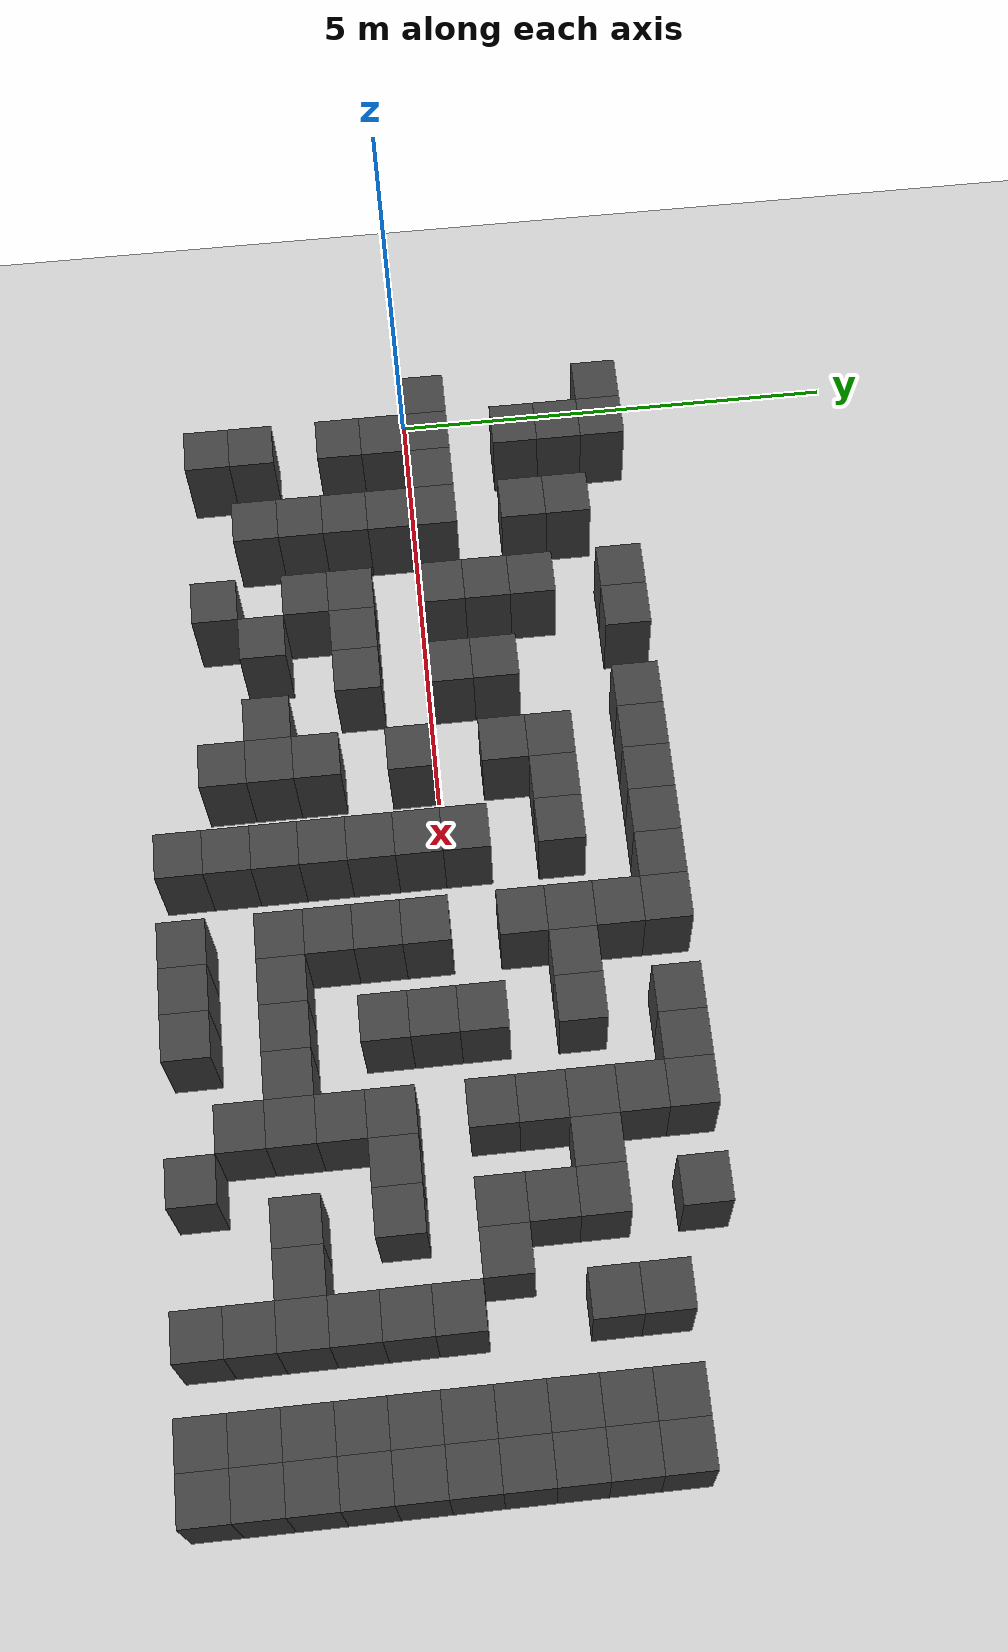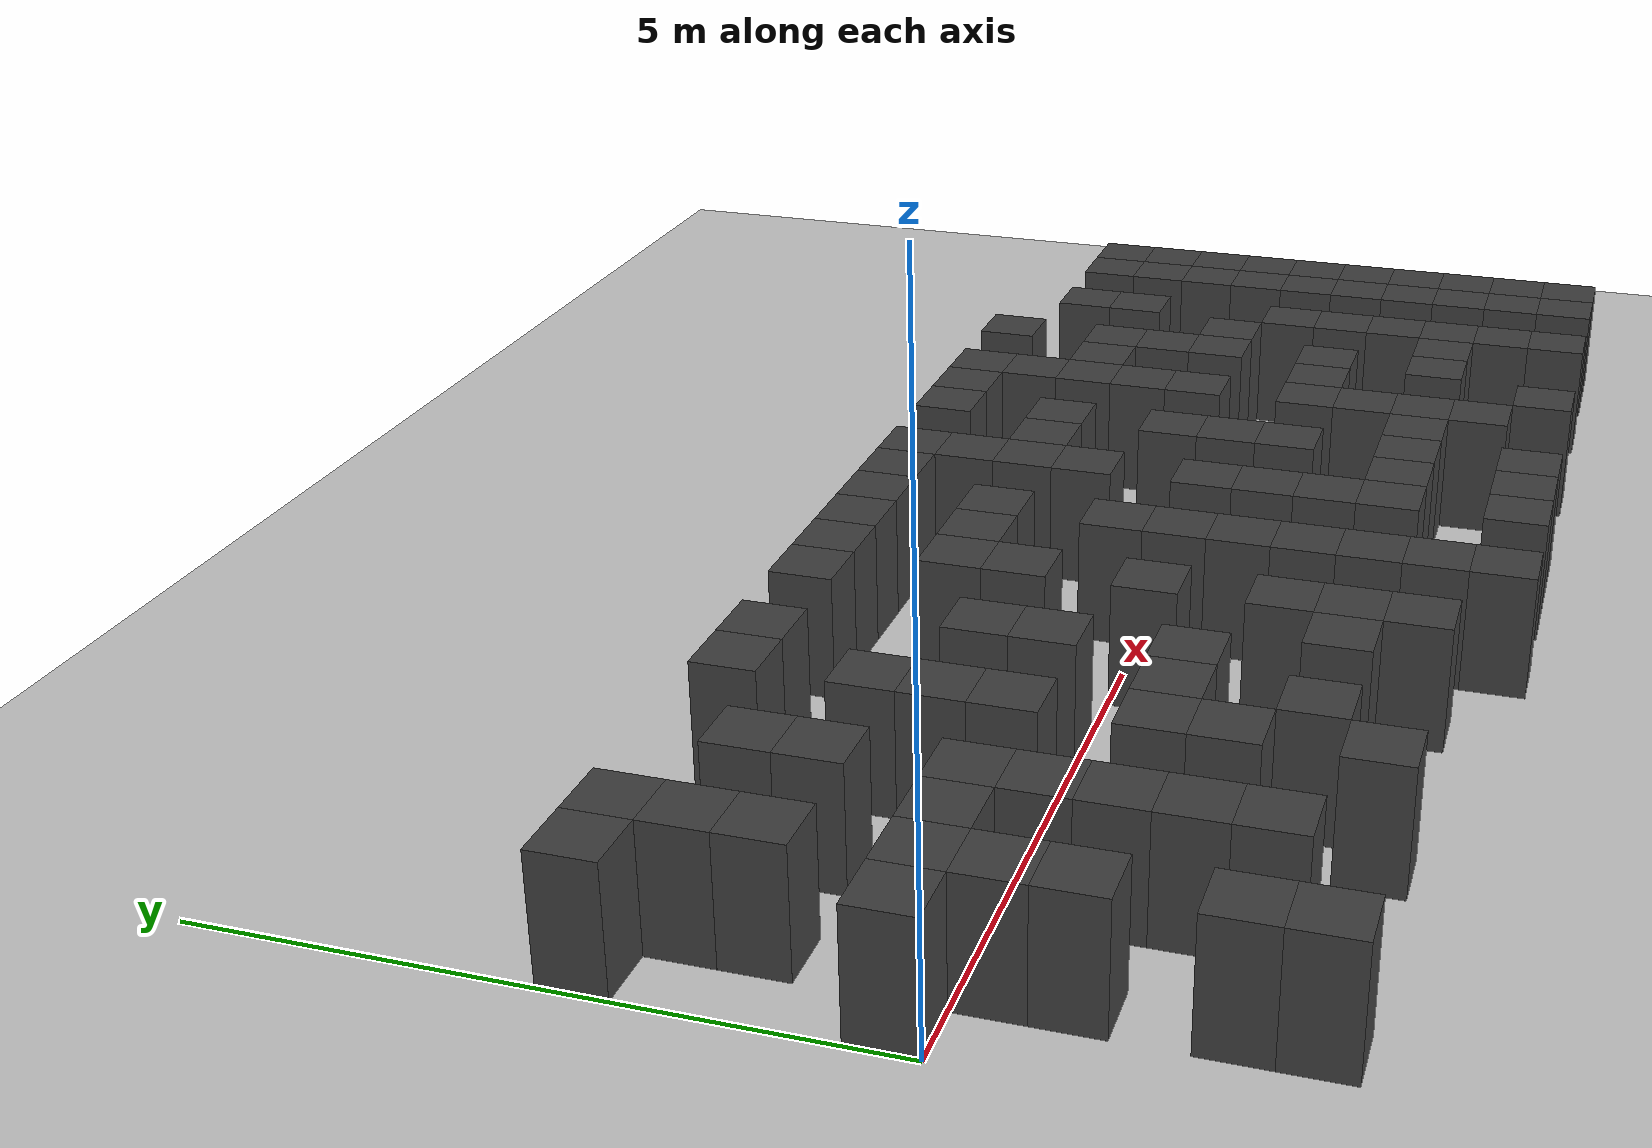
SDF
<sdf version="1.7">
 <world name="map_15168">
  <model name="ground_plane">
   <static>true</static>
   <link name="link">
    <collision name="collision">
     <geometry><plane><normal>0 0 1</normal><size>200 200</size></plane></geometry>
    </collision>
    <visual name="visual">
     <geometry><plane><normal>0 0 1</normal><size>200 200</size></plane></geometry>
     <material><ambient>0.8 0.8 0.8 1</ambient><diffuse>0.8 0.8 0.8 1</diffuse></material>
    </visual>
   </link>
  </model>
  <model name="maze_environment">
   <static>true</static>
   <link name="wall_488">
    <pose>0.250 2.250 0.500 0 0 0</pose>
    <collision name="col"><geometry><box><size>0.5 0.5 1.0</size></box></geometry></collision>
    <visual name="vis">
     <geometry><box><size>0.5 0.5 1.0</size></box></geometry>
     <material><ambient>0.15 0.15 0.15 1</ambient><diffuse>0.25 0.25 0.25 1</diffuse></material>
    </visual>
   </link>
   <link name="wall_489">
    <pose>0.750 2.250 0.500 0 0 0</pose>
    <collision name="col"><geometry><box><size>0.5 0.5 1.0</size></box></geometry></collision>
    <visual name="vis">
     <geometry><box><size>0.5 0.5 1.0</size></box></geometry>
     <material><ambient>0.15 0.15 0.15 1</ambient><diffuse>0.25 0.25 0.25 1</diffuse></material>
    </visual>
   </link>
   <link name="wall_490">
    <pose>2.750 2.250 0.500 0 0 0</pose>
    <collision name="col"><geometry><box><size>0.5 0.5 1.0</size></box></geometry></collision>
    <visual name="vis">
     <geometry><box><size>0.5 0.5 1.0</size></box></geometry>
     <material><ambient>0.15 0.15 0.15 1</ambient><diffuse>0.25 0.25 0.25 1</diffuse></material>
    </visual>
   </link>
   <link name="wall_491">
    <pose>3.250 2.250 0.500 0 0 0</pose>
    <collision name="col"><geometry><box><size>0.5 0.5 1.0</size></box></geometry></collision>
    <visual name="vis">
     <geometry><box><size>0.5 0.5 1.0</size></box></geometry>
     <material><ambient>0.15 0.15 0.15 1</ambient><diffuse>0.25 0.25 0.25 1</diffuse></material>
    </visual>
   </link>
   <link name="wall_492">
    <pose>4.250 2.250 0.500 0 0 0</pose>
    <collision name="col"><geometry><box><size>0.5 0.5 1.0</size></box></geometry></collision>
    <visual name="vis">
     <geometry><box><size>0.5 0.5 1.0</size></box></geometry>
     <material><ambient>0.15 0.15 0.15 1</ambient><diffuse>0.25 0.25 0.25 1</diffuse></material>
    </visual>
   </link>
   <link name="wall_493">
    <pose>4.750 2.250 0.500 0 0 0</pose>
    <collision name="col"><geometry><box><size>0.5 0.5 1.0</size></box></geometry></collision>
    <visual name="vis">
     <geometry><box><size>0.5 0.5 1.0</size></box></geometry>
     <material><ambient>0.15 0.15 0.15 1</ambient><diffuse>0.25 0.25 0.25 1</diffuse></material>
    </visual>
   </link>
   <link name="wall_494">
    <pose>5.250 2.250 0.500 0 0 0</pose>
    <collision name="col"><geometry><box><size>0.5 0.5 1.0</size></box></geometry></collision>
    <visual name="vis">
     <geometry><box><size>0.5 0.5 1.0</size></box></geometry>
     <material><ambient>0.15 0.15 0.15 1</ambient><diffuse>0.25 0.25 0.25 1</diffuse></material>
    </visual>
   </link>
   <link name="wall_495">
    <pose>5.750 2.250 0.500 0 0 0</pose>
    <collision name="col"><geometry><box><size>0.5 0.5 1.0</size></box></geometry></collision>
    <visual name="vis">
     <geometry><box><size>0.5 0.5 1.0</size></box></geometry>
     <material><ambient>0.15 0.15 0.15 1</ambient><diffuse>0.25 0.25 0.25 1</diffuse></material>
    </visual>
   </link>
   <link name="wall_496">
    <pose>6.250 2.250 0.500 0 0 0</pose>
    <collision name="col"><geometry><box><size>0.5 0.5 1.0</size></box></geometry></collision>
    <visual name="vis">
     <geometry><box><size>0.5 0.5 1.0</size></box></geometry>
     <material><ambient>0.15 0.15 0.15 1</ambient><diffuse>0.25 0.25 0.25 1</diffuse></material>
    </visual>
   </link>
   <link name="wall_497">
    <pose>6.750 2.250 0.500 0 0 0</pose>
    <collision name="col"><geometry><box><size>0.5 0.5 1.0</size></box></geometry></collision>
    <visual name="vis">
     <geometry><box><size>0.5 0.5 1.0</size></box></geometry>
     <material><ambient>0.15 0.15 0.15 1</ambient><diffuse>0.25 0.25 0.25 1</diffuse></material>
    </visual>
   </link>
   <link name="wall_498">
    <pose>7.750 2.250 0.500 0 0 0</pose>
    <collision name="col"><geometry><box><size>0.5 0.5 1.0</size></box></geometry></collision>
    <visual name="vis">
     <geometry><box><size>0.5 0.5 1.0</size></box></geometry>
     <material><ambient>0.15 0.15 0.15 1</ambient><diffuse>0.25 0.25 0.25 1</diffuse></material>
    </visual>
   </link>
   <link name="wall_499">
    <pose>8.250 2.250 0.500 0 0 0</pose>
    <collision name="col"><geometry><box><size>0.5 0.5 1.0</size></box></geometry></collision>
    <visual name="vis">
     <geometry><box><size>0.5 0.5 1.0</size></box></geometry>
     <material><ambient>0.15 0.15 0.15 1</ambient><diffuse>0.25 0.25 0.25 1</diffuse></material>
    </visual>
   </link>
   <link name="wall_500">
    <pose>8.750 2.250 0.500 0 0 0</pose>
    <collision name="col"><geometry><box><size>0.5 0.5 1.0</size></box></geometry></collision>
    <visual name="vis">
     <geometry><box><size>0.5 0.5 1.0</size></box></geometry>
     <material><ambient>0.15 0.15 0.15 1</ambient><diffuse>0.25 0.25 0.25 1</diffuse></material>
    </visual>
   </link>
   <link name="wall_501">
    <pose>9.750 2.250 0.500 0 0 0</pose>
    <collision name="col"><geometry><box><size>0.5 0.5 1.0</size></box></geometry></collision>
    <visual name="vis">
     <geometry><box><size>0.5 0.5 1.0</size></box></geometry>
     <material><ambient>0.15 0.15 0.15 1</ambient><diffuse>0.25 0.25 0.25 1</diffuse></material>
    </visual>
   </link>
   <link name="wall_514">
    <pose>0.750 1.750 0.500 0 0 0</pose>
    <collision name="col"><geometry><box><size>0.5 0.5 1.0</size></box></geometry></collision>
    <visual name="vis">
     <geometry><box><size>0.5 0.5 1.0</size></box></geometry>
     <material><ambient>0.15 0.15 0.15 1</ambient><diffuse>0.25 0.25 0.25 1</diffuse></material>
    </visual>
   </link>
   <link name="wall_515">
    <pose>1.750 1.750 0.500 0 0 0</pose>
    <collision name="col"><geometry><box><size>0.5 0.5 1.0</size></box></geometry></collision>
    <visual name="vis">
     <geometry><box><size>0.5 0.5 1.0</size></box></geometry>
     <material><ambient>0.15 0.15 0.15 1</ambient><diffuse>0.25 0.25 0.25 1</diffuse></material>
    </visual>
   </link>
   <link name="wall_516">
    <pose>6.750 1.750 0.500 0 0 0</pose>
    <collision name="col"><geometry><box><size>0.5 0.5 1.0</size></box></geometry></collision>
    <visual name="vis">
     <geometry><box><size>0.5 0.5 1.0</size></box></geometry>
     <material><ambient>0.15 0.15 0.15 1</ambient><diffuse>0.25 0.25 0.25 1</diffuse></material>
    </visual>
   </link>
   <link name="wall_517">
    <pose>8.750 1.750 0.500 0 0 0</pose>
    <collision name="col"><geometry><box><size>0.5 0.5 1.0</size></box></geometry></collision>
    <visual name="vis">
     <geometry><box><size>0.5 0.5 1.0</size></box></geometry>
     <material><ambient>0.15 0.15 0.15 1</ambient><diffuse>0.25 0.25 0.25 1</diffuse></material>
    </visual>
   </link>
   <link name="wall_518">
    <pose>10.750 1.750 0.500 0 0 0</pose>
    <collision name="col"><geometry><box><size>0.5 0.5 1.0</size></box></geometry></collision>
    <visual name="vis">
     <geometry><box><size>0.5 0.5 1.0</size></box></geometry>
     <material><ambient>0.15 0.15 0.15 1</ambient><diffuse>0.25 0.25 0.25 1</diffuse></material>
    </visual>
   </link>
   <link name="wall_519">
    <pose>11.750 1.750 0.500 0 0 0</pose>
    <collision name="col"><geometry><box><size>0.5 0.5 1.0</size></box></geometry></collision>
    <visual name="vis">
     <geometry><box><size>0.5 0.5 1.0</size></box></geometry>
     <material><ambient>0.15 0.15 0.15 1</ambient><diffuse>0.25 0.25 0.25 1</diffuse></material>
    </visual>
   </link>
   <link name="wall_520">
    <pose>12.250 1.750 0.500 0 0 0</pose>
    <collision name="col"><geometry><box><size>0.5 0.5 1.0</size></box></geometry></collision>
    <visual name="vis">
     <geometry><box><size>0.5 0.5 1.0</size></box></geometry>
     <material><ambient>0.15 0.15 0.15 1</ambient><diffuse>0.25 0.25 0.25 1</diffuse></material>
    </visual>
   </link>
   <link name="wall_537">
    <pose>0.750 1.250 0.500 0 0 0</pose>
    <collision name="col"><geometry><box><size>0.5 0.5 1.0</size></box></geometry></collision>
    <visual name="vis">
     <geometry><box><size>0.5 0.5 1.0</size></box></geometry>
     <material><ambient>0.15 0.15 0.15 1</ambient><diffuse>0.25 0.25 0.25 1</diffuse></material>
    </visual>
   </link>
   <link name="wall_538">
    <pose>1.750 1.250 0.500 0 0 0</pose>
    <collision name="col"><geometry><box><size>0.5 0.5 1.0</size></box></geometry></collision>
    <visual name="vis">
     <geometry><box><size>0.5 0.5 1.0</size></box></geometry>
     <material><ambient>0.15 0.15 0.15 1</ambient><diffuse>0.25 0.25 0.25 1</diffuse></material>
    </visual>
   </link>
   <link name="wall_539">
    <pose>2.750 1.250 0.500 0 0 0</pose>
    <collision name="col"><geometry><box><size>0.5 0.5 1.0</size></box></geometry></collision>
    <visual name="vis">
     <geometry><box><size>0.5 0.5 1.0</size></box></geometry>
     <material><ambient>0.15 0.15 0.15 1</ambient><diffuse>0.25 0.25 0.25 1</diffuse></material>
    </visual>
   </link>
   <link name="wall_540">
    <pose>4.750 1.250 0.500 0 0 0</pose>
    <collision name="col"><geometry><box><size>0.5 0.5 1.0</size></box></geometry></collision>
    <visual name="vis">
     <geometry><box><size>0.5 0.5 1.0</size></box></geometry>
     <material><ambient>0.15 0.15 0.15 1</ambient><diffuse>0.25 0.25 0.25 1</diffuse></material>
    </visual>
   </link>
   <link name="wall_541">
    <pose>5.250 1.250 0.500 0 0 0</pose>
    <collision name="col"><geometry><box><size>0.5 0.5 1.0</size></box></geometry></collision>
    <visual name="vis">
     <geometry><box><size>0.5 0.5 1.0</size></box></geometry>
     <material><ambient>0.15 0.15 0.15 1</ambient><diffuse>0.25 0.25 0.25 1</diffuse></material>
    </visual>
   </link>
   <link name="wall_542">
    <pose>5.750 1.250 0.500 0 0 0</pose>
    <collision name="col"><geometry><box><size>0.5 0.5 1.0</size></box></geometry></collision>
    <visual name="vis">
     <geometry><box><size>0.5 0.5 1.0</size></box></geometry>
     <material><ambient>0.15 0.15 0.15 1</ambient><diffuse>0.25 0.25 0.25 1</diffuse></material>
    </visual>
   </link>
   <link name="wall_543">
    <pose>6.750 1.250 0.500 0 0 0</pose>
    <collision name="col"><geometry><box><size>0.5 0.5 1.0</size></box></geometry></collision>
    <visual name="vis">
     <geometry><box><size>0.5 0.5 1.0</size></box></geometry>
     <material><ambient>0.15 0.15 0.15 1</ambient><diffuse>0.25 0.25 0.25 1</diffuse></material>
    </visual>
   </link>
   <link name="wall_544">
    <pose>7.250 1.250 0.500 0 0 0</pose>
    <collision name="col"><geometry><box><size>0.5 0.5 1.0</size></box></geometry></collision>
    <visual name="vis">
     <geometry><box><size>0.5 0.5 1.0</size></box></geometry>
     <material><ambient>0.15 0.15 0.15 1</ambient><diffuse>0.25 0.25 0.25 1</diffuse></material>
    </visual>
   </link>
   <link name="wall_545">
    <pose>7.750 1.250 0.500 0 0 0</pose>
    <collision name="col"><geometry><box><size>0.5 0.5 1.0</size></box></geometry></collision>
    <visual name="vis">
     <geometry><box><size>0.5 0.5 1.0</size></box></geometry>
     <material><ambient>0.15 0.15 0.15 1</ambient><diffuse>0.25 0.25 0.25 1</diffuse></material>
    </visual>
   </link>
   <link name="wall_546">
    <pose>8.750 1.250 0.500 0 0 0</pose>
    <collision name="col"><geometry><box><size>0.5 0.5 1.0</size></box></geometry></collision>
    <visual name="vis">
     <geometry><box><size>0.5 0.5 1.0</size></box></geometry>
     <material><ambient>0.15 0.15 0.15 1</ambient><diffuse>0.25 0.25 0.25 1</diffuse></material>
    </visual>
   </link>
   <link name="wall_547">
    <pose>9.250 1.250 0.500 0 0 0</pose>
    <collision name="col"><geometry><box><size>0.5 0.5 1.0</size></box></geometry></collision>
    <visual name="vis">
     <geometry><box><size>0.5 0.5 1.0</size></box></geometry>
     <material><ambient>0.15 0.15 0.15 1</ambient><diffuse>0.25 0.25 0.25 1</diffuse></material>
    </visual>
   </link>
   <link name="wall_548">
    <pose>9.750 1.250 0.500 0 0 0</pose>
    <collision name="col"><geometry><box><size>0.5 0.5 1.0</size></box></geometry></collision>
    <visual name="vis">
     <geometry><box><size>0.5 0.5 1.0</size></box></geometry>
     <material><ambient>0.15 0.15 0.15 1</ambient><diffuse>0.25 0.25 0.25 1</diffuse></material>
    </visual>
   </link>
   <link name="wall_549">
    <pose>10.750 1.250 0.500 0 0 0</pose>
    <collision name="col"><geometry><box><size>0.5 0.5 1.0</size></box></geometry></collision>
    <visual name="vis">
     <geometry><box><size>0.5 0.5 1.0</size></box></geometry>
     <material><ambient>0.15 0.15 0.15 1</ambient><diffuse>0.25 0.25 0.25 1</diffuse></material>
    </visual>
   </link>
   <link name="wall_550">
    <pose>11.750 1.250 0.500 0 0 0</pose>
    <collision name="col"><geometry><box><size>0.5 0.5 1.0</size></box></geometry></collision>
    <visual name="vis">
     <geometry><box><size>0.5 0.5 1.0</size></box></geometry>
     <material><ambient>0.15 0.15 0.15 1</ambient><diffuse>0.25 0.25 0.25 1</diffuse></material>
    </visual>
   </link>
   <link name="wall_551">
    <pose>12.250 1.250 0.500 0 0 0</pose>
    <collision name="col"><geometry><box><size>0.5 0.5 1.0</size></box></geometry></collision>
    <visual name="vis">
     <geometry><box><size>0.5 0.5 1.0</size></box></geometry>
     <material><ambient>0.15 0.15 0.15 1</ambient><diffuse>0.25 0.25 0.25 1</diffuse></material>
    </visual>
   </link>
   <link name="wall_557">
    <pose>2.750 0.750 0.500 0 0 0</pose>
    <collision name="col"><geometry><box><size>0.5 0.5 1.0</size></box></geometry></collision>
    <visual name="vis">
     <geometry><box><size>0.5 0.5 1.0</size></box></geometry>
     <material><ambient>0.15 0.15 0.15 1</ambient><diffuse>0.25 0.25 0.25 1</diffuse></material>
    </visual>
   </link>
   <link name="wall_558">
    <pose>3.750 0.750 0.500 0 0 0</pose>
    <collision name="col"><geometry><box><size>0.5 0.5 1.0</size></box></geometry></collision>
    <visual name="vis">
     <geometry><box><size>0.5 0.5 1.0</size></box></geometry>
     <material><ambient>0.15 0.15 0.15 1</ambient><diffuse>0.25 0.25 0.25 1</diffuse></material>
    </visual>
   </link>
   <link name="wall_559">
    <pose>4.750 0.750 0.500 0 0 0</pose>
    <collision name="col"><geometry><box><size>0.5 0.5 1.0</size></box></geometry></collision>
    <visual name="vis">
     <geometry><box><size>0.5 0.5 1.0</size></box></geometry>
     <material><ambient>0.15 0.15 0.15 1</ambient><diffuse>0.25 0.25 0.25 1</diffuse></material>
    </visual>
   </link>
   <link name="wall_560">
    <pose>6.750 0.750 0.500 0 0 0</pose>
    <collision name="col"><geometry><box><size>0.5 0.5 1.0</size></box></geometry></collision>
    <visual name="vis">
     <geometry><box><size>0.5 0.5 1.0</size></box></geometry>
     <material><ambient>0.15 0.15 0.15 1</ambient><diffuse>0.25 0.25 0.25 1</diffuse></material>
    </visual>
   </link>
   <link name="wall_561">
    <pose>8.750 0.750 0.500 0 0 0</pose>
    <collision name="col"><geometry><box><size>0.5 0.5 1.0</size></box></geometry></collision>
    <visual name="vis">
     <geometry><box><size>0.5 0.5 1.0</size></box></geometry>
     <material><ambient>0.15 0.15 0.15 1</ambient><diffuse>0.25 0.25 0.25 1</diffuse></material>
    </visual>
   </link>
   <link name="wall_562">
    <pose>9.750 0.750 0.500 0 0 0</pose>
    <collision name="col"><geometry><box><size>0.5 0.5 1.0</size></box></geometry></collision>
    <visual name="vis">
     <geometry><box><size>0.5 0.5 1.0</size></box></geometry>
     <material><ambient>0.15 0.15 0.15 1</ambient><diffuse>0.25 0.25 0.25 1</diffuse></material>
    </visual>
   </link>
   <link name="wall_563">
    <pose>11.750 0.750 0.500 0 0 0</pose>
    <collision name="col"><geometry><box><size>0.5 0.5 1.0</size></box></geometry></collision>
    <visual name="vis">
     <geometry><box><size>0.5 0.5 1.0</size></box></geometry>
     <material><ambient>0.15 0.15 0.15 1</ambient><diffuse>0.25 0.25 0.25 1</diffuse></material>
    </visual>
   </link>
   <link name="wall_564">
    <pose>12.250 0.750 0.500 0 0 0</pose>
    <collision name="col"><geometry><box><size>0.5 0.5 1.0</size></box></geometry></collision>
    <visual name="vis">
     <geometry><box><size>0.5 0.5 1.0</size></box></geometry>
     <material><ambient>0.15 0.15 0.15 1</ambient><diffuse>0.25 0.25 0.25 1</diffuse></material>
    </visual>
   </link>
   <link name="wall_583">
    <pose>0.250 0.250 0.500 0 0 0</pose>
    <collision name="col"><geometry><box><size>0.5 0.5 1.0</size></box></geometry></collision>
    <visual name="vis">
     <geometry><box><size>0.5 0.5 1.0</size></box></geometry>
     <material><ambient>0.15 0.15 0.15 1</ambient><diffuse>0.25 0.25 0.25 1</diffuse></material>
    </visual>
   </link>
   <link name="wall_584">
    <pose>0.750 0.250 0.500 0 0 0</pose>
    <collision name="col"><geometry><box><size>0.5 0.5 1.0</size></box></geometry></collision>
    <visual name="vis">
     <geometry><box><size>0.5 0.5 1.0</size></box></geometry>
     <material><ambient>0.15 0.15 0.15 1</ambient><diffuse>0.25 0.25 0.25 1</diffuse></material>
    </visual>
   </link>
   <link name="wall_585">
    <pose>1.250 0.250 0.500 0 0 0</pose>
    <collision name="col"><geometry><box><size>0.5 0.5 1.0</size></box></geometry></collision>
    <visual name="vis">
     <geometry><box><size>0.5 0.5 1.0</size></box></geometry>
     <material><ambient>0.15 0.15 0.15 1</ambient><diffuse>0.25 0.25 0.25 1</diffuse></material>
    </visual>
   </link>
   <link name="wall_586">
    <pose>1.750 0.250 0.500 0 0 0</pose>
    <collision name="col"><geometry><box><size>0.5 0.5 1.0</size></box></geometry></collision>
    <visual name="vis">
     <geometry><box><size>0.5 0.5 1.0</size></box></geometry>
     <material><ambient>0.15 0.15 0.15 1</ambient><diffuse>0.25 0.25 0.25 1</diffuse></material>
    </visual>
   </link>
   <link name="wall_587">
    <pose>2.750 0.250 0.500 0 0 0</pose>
    <collision name="col"><geometry><box><size>0.5 0.5 1.0</size></box></geometry></collision>
    <visual name="vis">
     <geometry><box><size>0.5 0.5 1.0</size></box></geometry>
     <material><ambient>0.15 0.15 0.15 1</ambient><diffuse>0.25 0.25 0.25 1</diffuse></material>
    </visual>
   </link>
   <link name="wall_588">
    <pose>3.750 0.250 0.500 0 0 0</pose>
    <collision name="col"><geometry><box><size>0.5 0.5 1.0</size></box></geometry></collision>
    <visual name="vis">
     <geometry><box><size>0.5 0.5 1.0</size></box></geometry>
     <material><ambient>0.15 0.15 0.15 1</ambient><diffuse>0.25 0.25 0.25 1</diffuse></material>
    </visual>
   </link>
   <link name="wall_589">
    <pose>5.750 0.250 0.500 0 0 0</pose>
    <collision name="col"><geometry><box><size>0.5 0.5 1.0</size></box></geometry></collision>
    <visual name="vis">
     <geometry><box><size>0.5 0.5 1.0</size></box></geometry>
     <material><ambient>0.15 0.15 0.15 1</ambient><diffuse>0.25 0.25 0.25 1</diffuse></material>
    </visual>
   </link>
   <link name="wall_590">
    <pose>7.750 0.250 0.500 0 0 0</pose>
    <collision name="col"><geometry><box><size>0.5 0.5 1.0</size></box></geometry></collision>
    <visual name="vis">
     <geometry><box><size>0.5 0.5 1.0</size></box></geometry>
     <material><ambient>0.15 0.15 0.15 1</ambient><diffuse>0.25 0.25 0.25 1</diffuse></material>
    </visual>
   </link>
   <link name="wall_591">
    <pose>8.750 0.250 0.500 0 0 0</pose>
    <collision name="col"><geometry><box><size>0.5 0.5 1.0</size></box></geometry></collision>
    <visual name="vis">
     <geometry><box><size>0.5 0.5 1.0</size></box></geometry>
     <material><ambient>0.15 0.15 0.15 1</ambient><diffuse>0.25 0.25 0.25 1</diffuse></material>
    </visual>
   </link>
   <link name="wall_592">
    <pose>9.750 0.250 0.500 0 0 0</pose>
    <collision name="col"><geometry><box><size>0.5 0.5 1.0</size></box></geometry></collision>
    <visual name="vis">
     <geometry><box><size>0.5 0.5 1.0</size></box></geometry>
     <material><ambient>0.15 0.15 0.15 1</ambient><diffuse>0.25 0.25 0.25 1</diffuse></material>
    </visual>
   </link>
   <link name="wall_593">
    <pose>10.250 0.250 0.500 0 0 0</pose>
    <collision name="col"><geometry><box><size>0.5 0.5 1.0</size></box></geometry></collision>
    <visual name="vis">
     <geometry><box><size>0.5 0.5 1.0</size></box></geometry>
     <material><ambient>0.15 0.15 0.15 1</ambient><diffuse>0.25 0.25 0.25 1</diffuse></material>
    </visual>
   </link>
   <link name="wall_594">
    <pose>11.750 0.250 0.500 0 0 0</pose>
    <collision name="col"><geometry><box><size>0.5 0.5 1.0</size></box></geometry></collision>
    <visual name="vis">
     <geometry><box><size>0.5 0.5 1.0</size></box></geometry>
     <material><ambient>0.15 0.15 0.15 1</ambient><diffuse>0.25 0.25 0.25 1</diffuse></material>
    </visual>
   </link>
   <link name="wall_595">
    <pose>12.250 0.250 0.500 0 0 0</pose>
    <collision name="col"><geometry><box><size>0.5 0.5 1.0</size></box></geometry></collision>
    <visual name="vis">
     <geometry><box><size>0.5 0.5 1.0</size></box></geometry>
     <material><ambient>0.15 0.15 0.15 1</ambient><diffuse>0.25 0.25 0.25 1</diffuse></material>
    </visual>
   </link>
   <link name="wall_600">
    <pose>0.750 -0.250 0.500 0 0 0</pose>
    <collision name="col"><geometry><box><size>0.5 0.5 1.0</size></box></geometry></collision>
    <visual name="vis">
     <geometry><box><size>0.5 0.5 1.0</size></box></geometry>
     <material><ambient>0.15 0.15 0.15 1</ambient><diffuse>0.25 0.25 0.25 1</diffuse></material>
    </visual>
   </link>
   <link name="wall_601">
    <pose>1.750 -0.250 0.500 0 0 0</pose>
    <collision name="col"><geometry><box><size>0.5 0.5 1.0</size></box></geometry></collision>
    <visual name="vis">
     <geometry><box><size>0.5 0.5 1.0</size></box></geometry>
     <material><ambient>0.15 0.15 0.15 1</ambient><diffuse>0.25 0.25 0.25 1</diffuse></material>
    </visual>
   </link>
   <link name="wall_602">
    <pose>4.750 -0.250 0.500 0 0 0</pose>
    <collision name="col"><geometry><box><size>0.5 0.5 1.0</size></box></geometry></collision>
    <visual name="vis">
     <geometry><box><size>0.5 0.5 1.0</size></box></geometry>
     <material><ambient>0.15 0.15 0.15 1</ambient><diffuse>0.25 0.25 0.25 1</diffuse></material>
    </visual>
   </link>
   <link name="wall_603">
    <pose>5.750 -0.250 0.500 0 0 0</pose>
    <collision name="col"><geometry><box><size>0.5 0.5 1.0</size></box></geometry></collision>
    <visual name="vis">
     <geometry><box><size>0.5 0.5 1.0</size></box></geometry>
     <material><ambient>0.15 0.15 0.15 1</ambient><diffuse>0.25 0.25 0.25 1</diffuse></material>
    </visual>
   </link>
   <link name="wall_604">
    <pose>6.750 -0.250 0.500 0 0 0</pose>
    <collision name="col"><geometry><box><size>0.5 0.5 1.0</size></box></geometry></collision>
    <visual name="vis">
     <geometry><box><size>0.5 0.5 1.0</size></box></geometry>
     <material><ambient>0.15 0.15 0.15 1</ambient><diffuse>0.25 0.25 0.25 1</diffuse></material>
    </visual>
   </link>
   <link name="wall_605">
    <pose>7.750 -0.250 0.500 0 0 0</pose>
    <collision name="col"><geometry><box><size>0.5 0.5 1.0</size></box></geometry></collision>
    <visual name="vis">
     <geometry><box><size>0.5 0.5 1.0</size></box></geometry>
     <material><ambient>0.15 0.15 0.15 1</ambient><diffuse>0.25 0.25 0.25 1</diffuse></material>
    </visual>
   </link>
   <link name="wall_606">
    <pose>10.750 -0.250 0.500 0 0 0</pose>
    <collision name="col"><geometry><box><size>0.5 0.5 1.0</size></box></geometry></collision>
    <visual name="vis">
     <geometry><box><size>0.5 0.5 1.0</size></box></geometry>
     <material><ambient>0.15 0.15 0.15 1</ambient><diffuse>0.25 0.25 0.25 1</diffuse></material>
    </visual>
   </link>
   <link name="wall_607">
    <pose>11.750 -0.250 0.500 0 0 0</pose>
    <collision name="col"><geometry><box><size>0.5 0.5 1.0</size></box></geometry></collision>
    <visual name="vis">
     <geometry><box><size>0.5 0.5 1.0</size></box></geometry>
     <material><ambient>0.15 0.15 0.15 1</ambient><diffuse>0.25 0.25 0.25 1</diffuse></material>
    </visual>
   </link>
   <link name="wall_608">
    <pose>12.250 -0.250 0.500 0 0 0</pose>
    <collision name="col"><geometry><box><size>0.5 0.5 1.0</size></box></geometry></collision>
    <visual name="vis">
     <geometry><box><size>0.5 0.5 1.0</size></box></geometry>
     <material><ambient>0.15 0.15 0.15 1</ambient><diffuse>0.25 0.25 0.25 1</diffuse></material>
    </visual>
   </link>
   <link name="wall_624">
    <pose>0.750 -0.750 0.500 0 0 0</pose>
    <collision name="col"><geometry><box><size>0.5 0.5 1.0</size></box></geometry></collision>
    <visual name="vis">
     <geometry><box><size>0.5 0.5 1.0</size></box></geometry>
     <material><ambient>0.15 0.15 0.15 1</ambient><diffuse>0.25 0.25 0.25 1</diffuse></material>
    </visual>
   </link>
   <link name="wall_625">
    <pose>1.750 -0.750 0.500 0 0 0</pose>
    <collision name="col"><geometry><box><size>0.5 0.5 1.0</size></box></geometry></collision>
    <visual name="vis">
     <geometry><box><size>0.5 0.5 1.0</size></box></geometry>
     <material><ambient>0.15 0.15 0.15 1</ambient><diffuse>0.25 0.25 0.25 1</diffuse></material>
    </visual>
   </link>
   <link name="wall_626">
    <pose>2.750 -0.750 0.500 0 0 0</pose>
    <collision name="col"><geometry><box><size>0.5 0.5 1.0</size></box></geometry></collision>
    <visual name="vis">
     <geometry><box><size>0.5 0.5 1.0</size></box></geometry>
     <material><ambient>0.15 0.15 0.15 1</ambient><diffuse>0.25 0.25 0.25 1</diffuse></material>
    </visual>
   </link>
   <link name="wall_627">
    <pose>3.250 -0.750 0.500 0 0 0</pose>
    <collision name="col"><geometry><box><size>0.5 0.5 1.0</size></box></geometry></collision>
    <visual name="vis">
     <geometry><box><size>0.5 0.5 1.0</size></box></geometry>
     <material><ambient>0.15 0.15 0.15 1</ambient><diffuse>0.25 0.25 0.25 1</diffuse></material>
    </visual>
   </link>
   <link name="wall_628">
    <pose>3.750 -0.750 0.500 0 0 0</pose>
    <collision name="col"><geometry><box><size>0.5 0.5 1.0</size></box></geometry></collision>
    <visual name="vis">
     <geometry><box><size>0.5 0.5 1.0</size></box></geometry>
     <material><ambient>0.15 0.15 0.15 1</ambient><diffuse>0.25 0.25 0.25 1</diffuse></material>
    </visual>
   </link>
   <link name="wall_629">
    <pose>5.750 -0.750 0.500 0 0 0</pose>
    <collision name="col"><geometry><box><size>0.5 0.5 1.0</size></box></geometry></collision>
    <visual name="vis">
     <geometry><box><size>0.5 0.5 1.0</size></box></geometry>
     <material><ambient>0.15 0.15 0.15 1</ambient><diffuse>0.25 0.25 0.25 1</diffuse></material>
    </visual>
   </link>
   <link name="wall_630">
    <pose>6.750 -0.750 0.500 0 0 0</pose>
    <collision name="col"><geometry><box><size>0.5 0.5 1.0</size></box></geometry></collision>
    <visual name="vis">
     <geometry><box><size>0.5 0.5 1.0</size></box></geometry>
     <material><ambient>0.15 0.15 0.15 1</ambient><diffuse>0.25 0.25 0.25 1</diffuse></material>
    </visual>
   </link>
   <link name="wall_631">
    <pose>7.750 -0.750 0.500 0 0 0</pose>
    <collision name="col"><geometry><box><size>0.5 0.5 1.0</size></box></geometry></collision>
    <visual name="vis">
     <geometry><box><size>0.5 0.5 1.0</size></box></geometry>
     <material><ambient>0.15 0.15 0.15 1</ambient><diffuse>0.25 0.25 0.25 1</diffuse></material>
    </visual>
   </link>
   <link name="wall_632">
    <pose>8.750 -0.750 0.500 0 0 0</pose>
    <collision name="col"><geometry><box><size>0.5 0.5 1.0</size></box></geometry></collision>
    <visual name="vis">
     <geometry><box><size>0.5 0.5 1.0</size></box></geometry>
     <material><ambient>0.15 0.15 0.15 1</ambient><diffuse>0.25 0.25 0.25 1</diffuse></material>
    </visual>
   </link>
   <link name="wall_633">
    <pose>9.250 -0.750 0.500 0 0 0</pose>
    <collision name="col"><geometry><box><size>0.5 0.5 1.0</size></box></geometry></collision>
    <visual name="vis">
     <geometry><box><size>0.5 0.5 1.0</size></box></geometry>
     <material><ambient>0.15 0.15 0.15 1</ambient><diffuse>0.25 0.25 0.25 1</diffuse></material>
    </visual>
   </link>
   <link name="wall_634">
    <pose>9.750 -0.750 0.500 0 0 0</pose>
    <collision name="col"><geometry><box><size>0.5 0.5 1.0</size></box></geometry></collision>
    <visual name="vis">
     <geometry><box><size>0.5 0.5 1.0</size></box></geometry>
     <material><ambient>0.15 0.15 0.15 1</ambient><diffuse>0.25 0.25 0.25 1</diffuse></material>
    </visual>
   </link>
   <link name="wall_635">
    <pose>10.750 -0.750 0.500 0 0 0</pose>
    <collision name="col"><geometry><box><size>0.5 0.5 1.0</size></box></geometry></collision>
    <visual name="vis">
     <geometry><box><size>0.5 0.5 1.0</size></box></geometry>
     <material><ambient>0.15 0.15 0.15 1</ambient><diffuse>0.25 0.25 0.25 1</diffuse></material>
    </visual>
   </link>
   <link name="wall_636">
    <pose>11.750 -0.750 0.500 0 0 0</pose>
    <collision name="col"><geometry><box><size>0.5 0.5 1.0</size></box></geometry></collision>
    <visual name="vis">
     <geometry><box><size>0.5 0.5 1.0</size></box></geometry>
     <material><ambient>0.15 0.15 0.15 1</ambient><diffuse>0.25 0.25 0.25 1</diffuse></material>
    </visual>
   </link>
   <link name="wall_637">
    <pose>12.250 -0.750 0.500 0 0 0</pose>
    <collision name="col"><geometry><box><size>0.5 0.5 1.0</size></box></geometry></collision>
    <visual name="vis">
     <geometry><box><size>0.5 0.5 1.0</size></box></geometry>
     <material><ambient>0.15 0.15 0.15 1</ambient><diffuse>0.25 0.25 0.25 1</diffuse></material>
    </visual>
   </link>
   <link name="wall_647">
    <pose>1.750 -1.250 0.500 0 0 0</pose>
    <collision name="col"><geometry><box><size>0.5 0.5 1.0</size></box></geometry></collision>
    <visual name="vis">
     <geometry><box><size>0.5 0.5 1.0</size></box></geometry>
     <material><ambient>0.15 0.15 0.15 1</ambient><diffuse>0.25 0.25 0.25 1</diffuse></material>
    </visual>
   </link>
   <link name="wall_648">
    <pose>2.750 -1.250 0.500 0 0 0</pose>
    <collision name="col"><geometry><box><size>0.5 0.5 1.0</size></box></geometry></collision>
    <visual name="vis">
     <geometry><box><size>0.5 0.5 1.0</size></box></geometry>
     <material><ambient>0.15 0.15 0.15 1</ambient><diffuse>0.25 0.25 0.25 1</diffuse></material>
    </visual>
   </link>
   <link name="wall_649">
    <pose>4.750 -1.250 0.500 0 0 0</pose>
    <collision name="col"><geometry><box><size>0.5 0.5 1.0</size></box></geometry></collision>
    <visual name="vis">
     <geometry><box><size>0.5 0.5 1.0</size></box></geometry>
     <material><ambient>0.15 0.15 0.15 1</ambient><diffuse>0.25 0.25 0.25 1</diffuse></material>
    </visual>
   </link>
   <link name="wall_650">
    <pose>5.750 -1.250 0.500 0 0 0</pose>
    <collision name="col"><geometry><box><size>0.5 0.5 1.0</size></box></geometry></collision>
    <visual name="vis">
     <geometry><box><size>0.5 0.5 1.0</size></box></geometry>
     <material><ambient>0.15 0.15 0.15 1</ambient><diffuse>0.25 0.25 0.25 1</diffuse></material>
    </visual>
   </link>
   <link name="wall_651">
    <pose>6.750 -1.250 0.500 0 0 0</pose>
    <collision name="col"><geometry><box><size>0.5 0.5 1.0</size></box></geometry></collision>
    <visual name="vis">
     <geometry><box><size>0.5 0.5 1.0</size></box></geometry>
     <material><ambient>0.15 0.15 0.15 1</ambient><diffuse>0.25 0.25 0.25 1</diffuse></material>
    </visual>
   </link>
   <link name="wall_652">
    <pose>8.750 -1.250 0.500 0 0 0</pose>
    <collision name="col"><geometry><box><size>0.5 0.5 1.0</size></box></geometry></collision>
    <visual name="vis">
     <geometry><box><size>0.5 0.5 1.0</size></box></geometry>
     <material><ambient>0.15 0.15 0.15 1</ambient><diffuse>0.25 0.25 0.25 1</diffuse></material>
    </visual>
   </link>
   <link name="wall_653">
    <pose>10.750 -1.250 0.500 0 0 0</pose>
    <collision name="col"><geometry><box><size>0.5 0.5 1.0</size></box></geometry></collision>
    <visual name="vis">
     <geometry><box><size>0.5 0.5 1.0</size></box></geometry>
     <material><ambient>0.15 0.15 0.15 1</ambient><diffuse>0.25 0.25 0.25 1</diffuse></material>
    </visual>
   </link>
   <link name="wall_654">
    <pose>11.750 -1.250 0.500 0 0 0</pose>
    <collision name="col"><geometry><box><size>0.5 0.5 1.0</size></box></geometry></collision>
    <visual name="vis">
     <geometry><box><size>0.5 0.5 1.0</size></box></geometry>
     <material><ambient>0.15 0.15 0.15 1</ambient><diffuse>0.25 0.25 0.25 1</diffuse></material>
    </visual>
   </link>
   <link name="wall_655">
    <pose>12.250 -1.250 0.500 0 0 0</pose>
    <collision name="col"><geometry><box><size>0.5 0.5 1.0</size></box></geometry></collision>
    <visual name="vis">
     <geometry><box><size>0.5 0.5 1.0</size></box></geometry>
     <material><ambient>0.15 0.15 0.15 1</ambient><diffuse>0.25 0.25 0.25 1</diffuse></material>
    </visual>
   </link>
   <link name="wall_669">
    <pose>0.750 -1.750 0.500 0 0 0</pose>
    <collision name="col"><geometry><box><size>0.5 0.5 1.0</size></box></geometry></collision>
    <visual name="vis">
     <geometry><box><size>0.5 0.5 1.0</size></box></geometry>
     <material><ambient>0.15 0.15 0.15 1</ambient><diffuse>0.25 0.25 0.25 1</diffuse></material>
    </visual>
   </link>
   <link name="wall_670">
    <pose>1.750 -1.750 0.500 0 0 0</pose>
    <collision name="col"><geometry><box><size>0.5 0.5 1.0</size></box></geometry></collision>
    <visual name="vis">
     <geometry><box><size>0.5 0.5 1.0</size></box></geometry>
     <material><ambient>0.15 0.15 0.15 1</ambient><diffuse>0.25 0.25 0.25 1</diffuse></material>
    </visual>
   </link>
   <link name="wall_671">
    <pose>3.250 -1.750 0.500 0 0 0</pose>
    <collision name="col"><geometry><box><size>0.5 0.5 1.0</size></box></geometry></collision>
    <visual name="vis">
     <geometry><box><size>0.5 0.5 1.0</size></box></geometry>
     <material><ambient>0.15 0.15 0.15 1</ambient><diffuse>0.25 0.25 0.25 1</diffuse></material>
    </visual>
   </link>
   <link name="wall_672">
    <pose>4.250 -1.750 0.500 0 0 0</pose>
    <collision name="col"><geometry><box><size>0.5 0.5 1.0</size></box></geometry></collision>
    <visual name="vis">
     <geometry><box><size>0.5 0.5 1.0</size></box></geometry>
     <material><ambient>0.15 0.15 0.15 1</ambient><diffuse>0.25 0.25 0.25 1</diffuse></material>
    </visual>
   </link>
   <link name="wall_673">
    <pose>4.750 -1.750 0.500 0 0 0</pose>
    <collision name="col"><geometry><box><size>0.5 0.5 1.0</size></box></geometry></collision>
    <visual name="vis">
     <geometry><box><size>0.5 0.5 1.0</size></box></geometry>
     <material><ambient>0.15 0.15 0.15 1</ambient><diffuse>0.25 0.25 0.25 1</diffuse></material>
    </visual>
   </link>
   <link name="wall_674">
    <pose>5.750 -1.750 0.500 0 0 0</pose>
    <collision name="col"><geometry><box><size>0.5 0.5 1.0</size></box></geometry></collision>
    <visual name="vis">
     <geometry><box><size>0.5 0.5 1.0</size></box></geometry>
     <material><ambient>0.15 0.15 0.15 1</ambient><diffuse>0.25 0.25 0.25 1</diffuse></material>
    </visual>
   </link>
   <link name="wall_675">
    <pose>6.750 -1.750 0.500 0 0 0</pose>
    <collision name="col"><geometry><box><size>0.5 0.5 1.0</size></box></geometry></collision>
    <visual name="vis">
     <geometry><box><size>0.5 0.5 1.0</size></box></geometry>
     <material><ambient>0.15 0.15 0.15 1</ambient><diffuse>0.25 0.25 0.25 1</diffuse></material>
    </visual>
   </link>
   <link name="wall_676">
    <pose>7.250 -1.750 0.500 0 0 0</pose>
    <collision name="col"><geometry><box><size>0.5 0.5 1.0</size></box></geometry></collision>
    <visual name="vis">
     <geometry><box><size>0.5 0.5 1.0</size></box></geometry>
     <material><ambient>0.15 0.15 0.15 1</ambient><diffuse>0.25 0.25 0.25 1</diffuse></material>
    </visual>
   </link>
   <link name="wall_677">
    <pose>7.750 -1.750 0.500 0 0 0</pose>
    <collision name="col"><geometry><box><size>0.5 0.5 1.0</size></box></geometry></collision>
    <visual name="vis">
     <geometry><box><size>0.5 0.5 1.0</size></box></geometry>
     <material><ambient>0.15 0.15 0.15 1</ambient><diffuse>0.25 0.25 0.25 1</diffuse></material>
    </visual>
   </link>
   <link name="wall_678">
    <pose>8.250 -1.750 0.500 0 0 0</pose>
    <collision name="col"><geometry><box><size>0.5 0.5 1.0</size></box></geometry></collision>
    <visual name="vis">
     <geometry><box><size>0.5 0.5 1.0</size></box></geometry>
     <material><ambient>0.15 0.15 0.15 1</ambient><diffuse>0.25 0.25 0.25 1</diffuse></material>
    </visual>
   </link>
   <link name="wall_679">
    <pose>8.750 -1.750 0.500 0 0 0</pose>
    <collision name="col"><geometry><box><size>0.5 0.5 1.0</size></box></geometry></collision>
    <visual name="vis">
     <geometry><box><size>0.5 0.5 1.0</size></box></geometry>
     <material><ambient>0.15 0.15 0.15 1</ambient><diffuse>0.25 0.25 0.25 1</diffuse></material>
    </visual>
   </link>
   <link name="wall_680">
    <pose>9.750 -1.750 0.500 0 0 0</pose>
    <collision name="col"><geometry><box><size>0.5 0.5 1.0</size></box></geometry></collision>
    <visual name="vis">
     <geometry><box><size>0.5 0.5 1.0</size></box></geometry>
     <material><ambient>0.15 0.15 0.15 1</ambient><diffuse>0.25 0.25 0.25 1</diffuse></material>
    </visual>
   </link>
   <link name="wall_681">
    <pose>10.250 -1.750 0.500 0 0 0</pose>
    <collision name="col"><geometry><box><size>0.5 0.5 1.0</size></box></geometry></collision>
    <visual name="vis">
     <geometry><box><size>0.5 0.5 1.0</size></box></geometry>
     <material><ambient>0.15 0.15 0.15 1</ambient><diffuse>0.25 0.25 0.25 1</diffuse></material>
    </visual>
   </link>
   <link name="wall_682">
    <pose>10.750 -1.750 0.500 0 0 0</pose>
    <collision name="col"><geometry><box><size>0.5 0.5 1.0</size></box></geometry></collision>
    <visual name="vis">
     <geometry><box><size>0.5 0.5 1.0</size></box></geometry>
     <material><ambient>0.15 0.15 0.15 1</ambient><diffuse>0.25 0.25 0.25 1</diffuse></material>
    </visual>
   </link>
   <link name="wall_683">
    <pose>11.750 -1.750 0.500 0 0 0</pose>
    <collision name="col"><geometry><box><size>0.5 0.5 1.0</size></box></geometry></collision>
    <visual name="vis">
     <geometry><box><size>0.5 0.5 1.0</size></box></geometry>
     <material><ambient>0.15 0.15 0.15 1</ambient><diffuse>0.25 0.25 0.25 1</diffuse></material>
    </visual>
   </link>
   <link name="wall_684">
    <pose>12.250 -1.750 0.500 0 0 0</pose>
    <collision name="col"><geometry><box><size>0.5 0.5 1.0</size></box></geometry></collision>
    <visual name="vis">
     <geometry><box><size>0.5 0.5 1.0</size></box></geometry>
     <material><ambient>0.15 0.15 0.15 1</ambient><diffuse>0.25 0.25 0.25 1</diffuse></material>
    </visual>
   </link>
   <link name="wall_693">
    <pose>0.750 -2.250 0.500 0 0 0</pose>
    <collision name="col"><geometry><box><size>0.5 0.5 1.0</size></box></geometry></collision>
    <visual name="vis">
     <geometry><box><size>0.5 0.5 1.0</size></box></geometry>
     <material><ambient>0.15 0.15 0.15 1</ambient><diffuse>0.25 0.25 0.25 1</diffuse></material>
    </visual>
   </link>
   <link name="wall_694">
    <pose>2.750 -2.250 0.500 0 0 0</pose>
    <collision name="col"><geometry><box><size>0.5 0.5 1.0</size></box></geometry></collision>
    <visual name="vis">
     <geometry><box><size>0.5 0.5 1.0</size></box></geometry>
     <material><ambient>0.15 0.15 0.15 1</ambient><diffuse>0.25 0.25 0.25 1</diffuse></material>
    </visual>
   </link>
   <link name="wall_695">
    <pose>4.750 -2.250 0.500 0 0 0</pose>
    <collision name="col"><geometry><box><size>0.5 0.5 1.0</size></box></geometry></collision>
    <visual name="vis">
     <geometry><box><size>0.5 0.5 1.0</size></box></geometry>
     <material><ambient>0.15 0.15 0.15 1</ambient><diffuse>0.25 0.25 0.25 1</diffuse></material>
    </visual>
   </link>
   <link name="wall_696">
    <pose>5.750 -2.250 0.500 0 0 0</pose>
    <collision name="col"><geometry><box><size>0.5 0.5 1.0</size></box></geometry></collision>
    <visual name="vis">
     <geometry><box><size>0.5 0.5 1.0</size></box></geometry>
     <material><ambient>0.15 0.15 0.15 1</ambient><diffuse>0.25 0.25 0.25 1</diffuse></material>
    </visual>
   </link>
   <link name="wall_697">
    <pose>8.750 -2.250 0.500 0 0 0</pose>
    <collision name="col"><geometry><box><size>0.5 0.5 1.0</size></box></geometry></collision>
    <visual name="vis">
     <geometry><box><size>0.5 0.5 1.0</size></box></geometry>
     <material><ambient>0.15 0.15 0.15 1</ambient><diffuse>0.25 0.25 0.25 1</diffuse></material>
    </visual>
   </link>
   <link name="wall_698">
    <pose>10.750 -2.250 0.500 0 0 0</pose>
    <collision name="col"><geometry><box><size>0.5 0.5 1.0</size></box></geometry></collision>
    <visual name="vis">
     <geometry><box><size>0.5 0.5 1.0</size></box></geometry>
     <material><ambient>0.15 0.15 0.15 1</ambient><diffuse>0.25 0.25 0.25 1</diffuse></material>
    </visual>
   </link>
   <link name="wall_699">
    <pose>11.750 -2.250 0.500 0 0 0</pose>
    <collision name="col"><geometry><box><size>0.5 0.5 1.0</size></box></geometry></collision>
    <visual name="vis">
     <geometry><box><size>0.5 0.5 1.0</size></box></geometry>
     <material><ambient>0.15 0.15 0.15 1</ambient><diffuse>0.25 0.25 0.25 1</diffuse></material>
    </visual>
   </link>
   <link name="wall_700">
    <pose>12.250 -2.250 0.500 0 0 0</pose>
    <collision name="col"><geometry><box><size>0.5 0.5 1.0</size></box></geometry></collision>
    <visual name="vis">
     <geometry><box><size>0.5 0.5 1.0</size></box></geometry>
     <material><ambient>0.15 0.15 0.15 1</ambient><diffuse>0.25 0.25 0.25 1</diffuse></material>
    </visual>
   </link>
   <link name="wall_724">
    <pose>5.750 -2.750 0.500 0 0 0</pose>
    <collision name="col"><geometry><box><size>0.5 0.5 1.0</size></box></geometry></collision>
    <visual name="vis">
     <geometry><box><size>0.5 0.5 1.0</size></box></geometry>
     <material><ambient>0.15 0.15 0.15 1</ambient><diffuse>0.25 0.25 0.25 1</diffuse></material>
    </visual>
   </link>
   <link name="wall_725">
    <pose>6.750 -2.750 0.500 0 0 0</pose>
    <collision name="col"><geometry><box><size>0.5 0.5 1.0</size></box></geometry></collision>
    <visual name="vis">
     <geometry><box><size>0.5 0.5 1.0</size></box></geometry>
     <material><ambient>0.15 0.15 0.15 1</ambient><diffuse>0.25 0.25 0.25 1</diffuse></material>
    </visual>
   </link>
   <link name="wall_726">
    <pose>7.250 -2.750 0.500 0 0 0</pose>
    <collision name="col"><geometry><box><size>0.5 0.5 1.0</size></box></geometry></collision>
    <visual name="vis">
     <geometry><box><size>0.5 0.5 1.0</size></box></geometry>
     <material><ambient>0.15 0.15 0.15 1</ambient><diffuse>0.25 0.25 0.25 1</diffuse></material>
    </visual>
   </link>
   <link name="wall_727">
    <pose>7.750 -2.750 0.500 0 0 0</pose>
    <collision name="col"><geometry><box><size>0.5 0.5 1.0</size></box></geometry></collision>
    <visual name="vis">
     <geometry><box><size>0.5 0.5 1.0</size></box></geometry>
     <material><ambient>0.15 0.15 0.15 1</ambient><diffuse>0.25 0.25 0.25 1</diffuse></material>
    </visual>
   </link>
   <link name="wall_728">
    <pose>9.250 -2.750 0.500 0 0 0</pose>
    <collision name="col"><geometry><box><size>0.5 0.5 1.0</size></box></geometry></collision>
    <visual name="vis">
     <geometry><box><size>0.5 0.5 1.0</size></box></geometry>
     <material><ambient>0.15 0.15 0.15 1</ambient><diffuse>0.25 0.25 0.25 1</diffuse></material>
    </visual>
   </link>
   <link name="wall_729">
    <pose>10.750 -2.750 0.500 0 0 0</pose>
    <collision name="col"><geometry><box><size>0.5 0.5 1.0</size></box></geometry></collision>
    <visual name="vis">
     <geometry><box><size>0.5 0.5 1.0</size></box></geometry>
     <material><ambient>0.15 0.15 0.15 1</ambient><diffuse>0.25 0.25 0.25 1</diffuse></material>
    </visual>
   </link>
   <link name="wall_730">
    <pose>11.750 -2.750 0.500 0 0 0</pose>
    <collision name="col"><geometry><box><size>0.5 0.5 1.0</size></box></geometry></collision>
    <visual name="vis">
     <geometry><box><size>0.5 0.5 1.0</size></box></geometry>
     <material><ambient>0.15 0.15 0.15 1</ambient><diffuse>0.25 0.25 0.25 1</diffuse></material>
    </visual>
   </link>
   <link name="wall_731">
    <pose>12.250 -2.750 0.500 0 0 0</pose>
    <collision name="col"><geometry><box><size>0.5 0.5 1.0</size></box></geometry></collision>
    <visual name="vis">
     <geometry><box><size>0.5 0.5 1.0</size></box></geometry>
     <material><ambient>0.15 0.15 0.15 1</ambient><diffuse>0.25 0.25 0.25 1</diffuse></material>
    </visual>
   </link>
  </model>
 </world>
</sdf>
